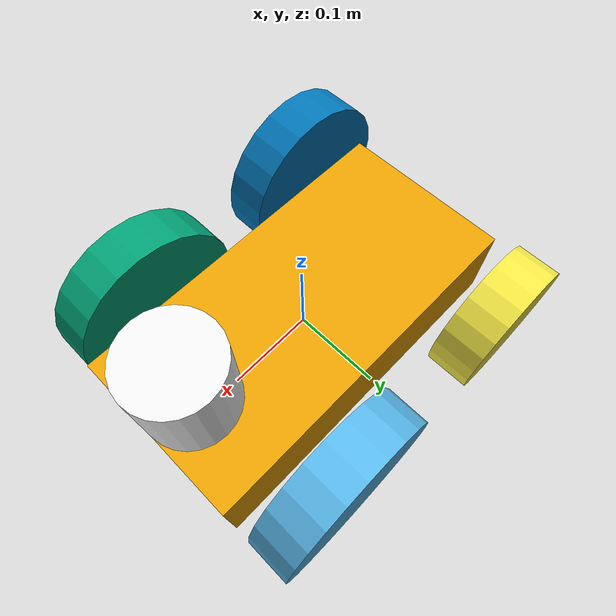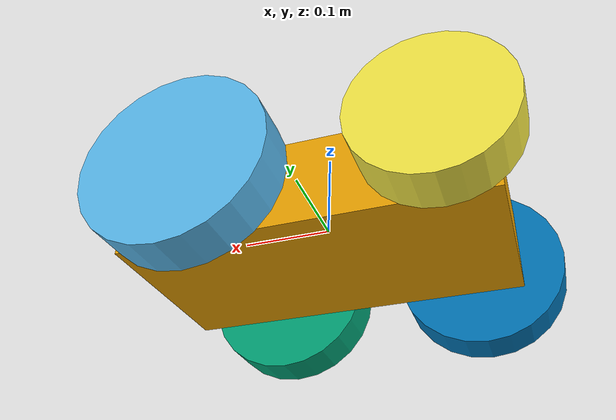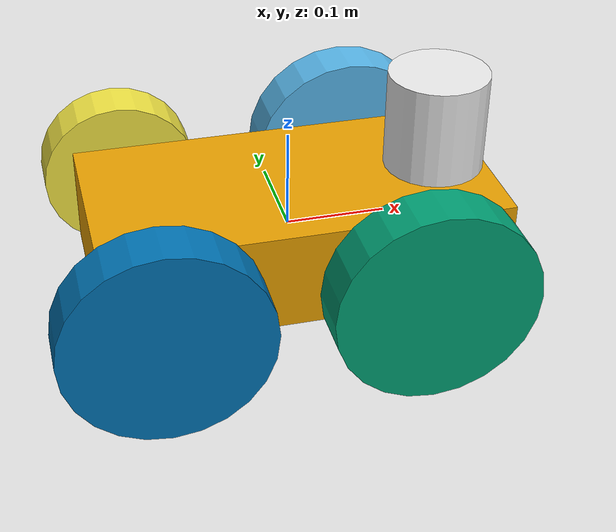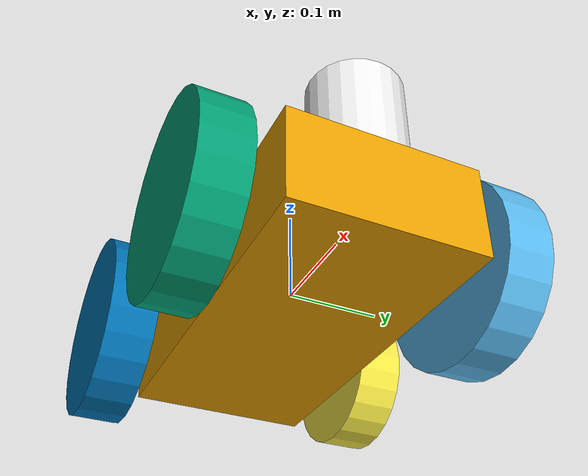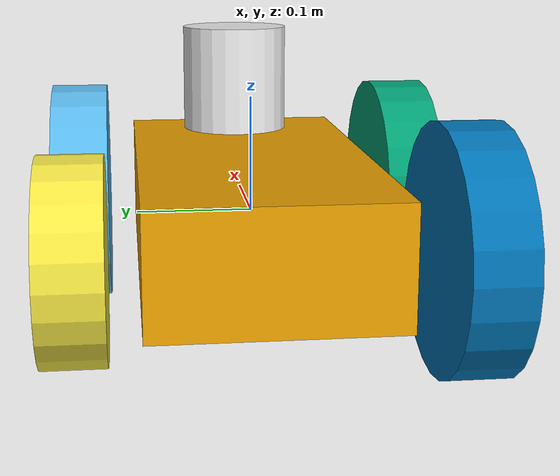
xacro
<?xml version='1.0'?>
<robot name="mybot_description" xmlns:xacro="http://www.ros.org/wiki/xacro">

<xacro:include filename="$(find mybot_description)/urdf/mybot.gazebo" />
 <xacro:include filename="$(find mybot_description)/urdf/materials.xacro" />
  <xacro:include filename="$(find mybot_description)/urdf/macros.xacro" />
<link name='chassis'>
 <pose>0 0 0.1 0 0 0</pose>
<inertial>
<mass value="10.0"/>
<origin xyz="0.0 0 0.1" rpy=" 0 0 0"/>
<inertia ixx="0.5" ixy="0" ixz="0" iyy="1.0" iyz="0" izz="0.1"/> </inertial>
<collision name='collision'> <geometry>
<box size=".4 .2 .1"/> </geometry>
</collision>
<visual name='chassis_visual'>
<origin xyz="0 0 0" rpy=" 0 0 0"/> <geometry>
<box size=".4 .2 .1"/> </geometry>
</visual>
 <ode>
<mu>0</mu>

<mu2>0</mu2> <slip1>1.0</slip1> <slip2>1.0</slip2>
</ode>
</link>
<link name="left_wheel">
<!--origin xyz="0.1 0.13 0.1" rpy="0 1.5707 1.5707"/--> <collision name="collision">
<origin xyz="0 0 0" rpy="0 1.5707 1.5707"/> <geometry>
<cylinder radius="0.1" length="0.05"/> </geometry>
</collision>
<visual name="left_wheel_visual">

<origin xyz="0 0 0" rpy="0 1.5707 1.5707"/> <geometry>
<cylinder radius="0.1" length="0.05"/> </geometry>
</visual>
 <inertial>
<origin xyz="0 0 0" rpy="0 1.5707 1.5707"/> <mass value="5"/>
<cylinder_inertia m="5" r="0.1" h="0.05"/>
<inertia ixx="1.0" ixy="0.0" ixz="0.0" iyy="1.0" iyz="0.0" izz="1.0"/>
</inertial>
</link>
<link name="right_wheel">

<!--origin xyz="0.1 -0.13 0.1" rpy="0 1.5707 1.5707"/-->
 <collision name="collision">
<origin xyz="0 0 0" rpy="0 1.5707 1.5707"/> <geometry>
<cylinder radius="0.1" length="0.05"/> </geometry>
</collision>
<visual name="right_wheel_visual">
<origin xyz="0 0 0" rpy="0 1.5707 1.5707"/>

<geometry>
<cylinder radius="0.1" length="0.05"/>
</geometry> </visual> <inertial>
<origin xyz="0 0 0" rpy="0 1.5707 1.5707"/> <mass value="5"/>
<cylinder_inertia m="5" r="0.1" h="0.05"/>
<inertia ixx="1.0" ixy="0.0" ixz="0.0" iyy="1.0" iyz="0.0" izz="1.0"/>
</inertial>
 </link>
<joint type="continuous" name="left_wheel_hinge"> <origin xyz="0.1 0.15 0" rpy="0 0 0"/>
<child link="left_wheel"/>
<parent link="chassis"/>
<axis xyz="0 1 0" rpy="0 0 0"/>
<limit effort="100" velocity="100"/> <joint_properties damping="0.0" friction="0.0"/>
</joint>
<joint type="continuous" name="right_wheel_hinge">

<origin xyz="0.1 -0.15 0" rpy="0 0 0"/> <child link="right_wheel"/>
<parent link="chassis"/>
<axis xyz="0 1 0" rpy="0 0 0"/>
<limit effort="100" velocity="100"/>
<joint_properties damping="0.0" friction="0.0"/> </joint>

<link name="left_wheebl">
<!--origin xyz="0.1 0.13 0.1" rpy="0 1.5707 1.5707"/-->
<collision name="collision">
<origin xyz="0 0 0" rpy="0 1.5707 1.5707"/>
<geometry>
<cylinder radius="0.1" length="0.05"/>
</geometry>
</collision>
<visual name="left_wheelb_visual">
<origin xyz="0 0 0" rpy="0 1.5707 1.5707"/>
 <geometry>
<cylinder radius="0.08" length="0.05"/>
</geometry>
</visual>
 <inertial>
<origin xyz="0 0 0" rpy="0 1.5707 1.5707"/>
 <mass value="5"/>
<cylinder_inertia m="5" r="0.1" h="0.05"/>
 <inertia ixx="1.0" ixy="0.0" ixz="0.0" iyy="1.0" iyz="0.0" izz="1.0"/>
</inertial>
</link>
<link name="right_wheelb">
<!--origin xyz="0.1 -0.13 0.1" rpy="0 1.5707 1.5707"/-->
 <collision name="collision">
<origin xyz="0 0 0" rpy="0 1.5707 1.5707"/>
 <geometry>
<cylinder radius="0.1" length="0.05"/>
</geometry>
</collision>
<visual name="right_wheelb_visual">
<origin xyz="0 0 0" rpy="0 1.5707 1.5707"/>

<geometry>
<cylinder radius="0.1" length="0.05"/>
</geometry>
</visual>
 <inertial>
<origin xyz="0 0 0" rpy="0 1.5707 1.5707"/>
 <mass value="5"/>
<cylinder_inertia m="5" r="0.1" h="0.05"/>
 <inertia ixx="1.0" ixy="0.0" ixz="0.0" iyy="1.0" iyz="0.0" izz="1.0"/>
</inertial>
</link>
<joint type="continuous" name="left_wheelb_hinge">
 <origin xyz="-0.15 0.15 0" rpy="0 0 0"/>
<child link="left_wheebl"/>
<parent link="chassis"/>
<axis xyz="0 1 0" rpy="0 0 0"/>
<limit effort="100" velocity="100"/> <joint_properties damping="0.0" friction="0.0"/>
</joint>

<joint type="continuous" name="right_wheelb_hinge">

<origin xyz="-0.15 -0.15 0" rpy="0 0 0"/>
<child link="right_wheelb"/>
<parent link="chassis"/>
<axis xyz="0 1 0" rpy="0 0 0"/>
<limit effort="100" velocity="100"/>
<joint_properties damping="0.0" friction="0.0"/>
 </joint>

<link name="sensor_laser">
    <inertial>
      <origin xyz="0 0 0" rpy="0 0 0" />
      <mass value="1" />
      <!-- RANDOM INERTIA BELOW -->
      <inertia ixx="0.02" ixy="0" ixz="0" iyy="0.02" iyz="0" izz="0.02"/>
    </inertial>

    <visual>
      <origin xyz="0 0 0" rpy="0 0 0" />
      <geometry>
        <cylinder radius="0.05" length="0.1"/>
      </geometry>
      <material name="white" />
    </visual>

    <collision>
      <origin xyz="0 0 0" rpy="0 0 0"/>
      <geometry>
        <cylinder radius="0.05" length="0.1"/>
      </geometry>
    </collision>
  </link>

  <joint name="joint_sensor_laser" type="fixed">
    <origin xyz="0.15 0 0.1" rpy="0 0 0"/>
    <parent link="chassis"/>
    <child link="sensor_laser"/>
  </joint>

</robot>
